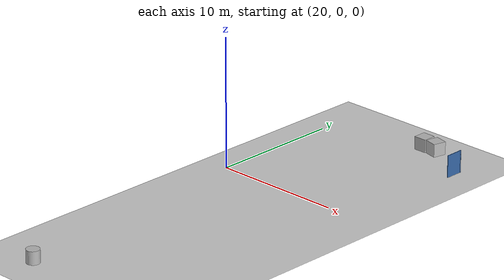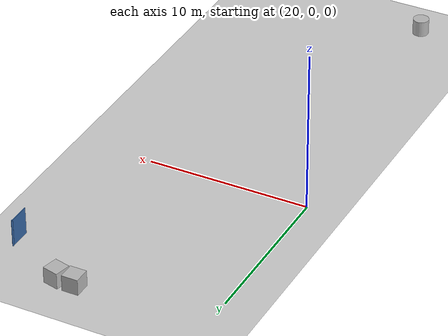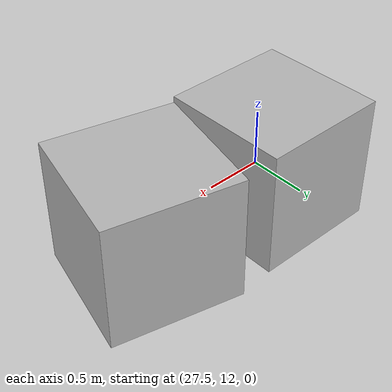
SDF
<sdf version="1.6">
 <world name="default">
  <light name="sun" type="directional">
   <pose>0 0 10 0 -0 0</pose>
   <diffuse>0.8 0.8 0.8 1</diffuse>
   <specular>0.2 0.2 0.2 1</specular>
   <attenuation>
    <range>1000</range>
    <constant>0.9</constant>
    <linear>0.01</linear>
    <quadratic>0.001</quadratic>
   </attenuation>
   <direction>-0.5 0.1 -0.9</direction>
  </light>
  <model name="ground_plane">
   <static>1</static>
   <link name="link">
    <collision name="collision">
     <geometry><plane><normal>0 0 1</normal><size>200 200</size></plane></geometry>
     <surface><friction><ode><mu>100</mu><mu2>50</mu2></ode></friction></surface>
    </collision>
    <visual name="visual">
     <cast_shadows>0</cast_shadows>
     <geometry><plane><normal>0 0 1</normal><size>200 200</size></plane></geometry>
     <material>
      <script><uri>file://media/materials/scripts/gazebo.material</uri><name>Gazebo/Grey</name></script>
     </material>
    </visual>
   </link>
  </model>
  <gravity>0 0 -9.8</gravity>
  <magnetic_field>6e-06 2.3e-05 -4.2e-05</magnetic_field>
  <atmosphere type="adiabatic"/>
  <physics name="default_physics" default="0" type="ode">
   <max_step_size>0.001</max_step_size>
   <real_time_factor>1</real_time_factor>
   <real_time_update_rate>1000</real_time_update_rate>
  </physics>
  <scene><ambient>0.4 0.4 0.4 1</ambient><background>0.7 0.7 0.7 1</background><shadows>1</shadows></scene>
  <spherical_coordinates>
   <surface_model>EARTH_WGS84</surface_model>
   <latitude_deg>0</latitude_deg>
   <longitude_deg>0</longitude_deg>
   <elevation>0</elevation>
   <heading_deg>0</heading_deg>
  </spherical_coordinates>
  <model name="hinge_door_1.3">
   <link name="link_0">
    <inertial>
     <mass>0.11</mass>
     <inertia>
      <ixx>0.0366896</ixx>
      <ixy>0</ixy>
      <ixz>0</ixz>
      <iyy>0.0477583</iyy>
      <iyz>0</iyz>
      <izz>0.0111146</izz>
     </inertia>
    </inertial>
    <pose>0.25 0 1 0 -0 0</pose>
    <visual name="visual">
     <geometry><box><size>1.3 0.05 1.7</size></box></geometry>
     <material>
      <lighting>1</lighting>
      <script><uri>file://media/materials/scripts/gazebo.material</uri><name>Gazebo/Grey</name></script>
      <shader type="pixel"><normal_map>__default__</normal_map></shader>
      <ambient>0.204 0.396 0.643 1</ambient>
      <diffuse>0.7 0.7 0.7 1</diffuse>
      <specular>0.01 0.01 0.01 1</specular>
      <emissive>0 0 0 1</emissive>
     </material>
    </visual>
    <collision name="collision">
     <geometry><box><size>1.3 0.05 1.7</size></box></geometry>
     <surface>
      <friction>
       <ode><mu>1</mu><mu2>1</mu2><fdir1>0 0 0</fdir1><slip1>0</slip1><slip2>0</slip2></ode>
       <torsional>
        <coefficient>1</coefficient>
        <patch_radius>0</patch_radius>
        <surface_radius>0</surface_radius>
        <use_patch_radius>1</use_patch_radius>
        <ode><slip>0</slip></ode>
       </torsional>
      </friction>
      <bounce><restitution_coefficient>0</restitution_coefficient><threshold>1e+06</threshold></bounce>
      <contact>
       <collide_without_contact>0</collide_without_contact>
       <collide_without_contact_bitmask>1</collide_without_contact_bitmask>
       <collide_bitmask>1</collide_bitmask>
       <ode>
        <soft_cfm>0</soft_cfm>
        <soft_erp>0.2</soft_erp>
        <kp>1e+13</kp>
        <kd>1</kd>
        <max_vel>0.01</max_vel>
        <min_depth>0</min_depth>
       </ode>
       <bullet>
        <split_impulse>1</split_impulse>
        <split_impulse_penetration_threshold>-0.01</split_impulse_penetration_threshold>
        <soft_cfm>0</soft_cfm>
        <soft_erp>0.2</soft_erp>
        <kp>1e+13</kp>
        <kd>1</kd>
       </bullet>
      </contact>
     </surface>
    </collision>
   </link>
   <link name="link_1">
    <inertial>
     <mass>10.9956</mass>
     <inertia>
      <ixx>3.67206</ixx>
      <ixy>0</ixy>
      <ixz>0</ixz>
      <iyy>3.67206</iyy>
      <iyz>0</iyz>
      <izz>0.0137445</izz>
     </inertia>
    </inertial>
    <pose>-0.45 0 1 0 -0 0</pose>
    <visual name="visual">
     <geometry><cylinder><radius>0.05</radius><length>1.7</length></cylinder></geometry>
     <material>
      <lighting>1</lighting>
      <script><uri>file://media/materials/scripts/gazebo.material</uri><name>Gazebo/Grey</name></script>
      <shader type="pixel"><normal_map>__default__</normal_map></shader>
      <ambient>0.204 0.396 0.643 1</ambient>
      <diffuse>0.7 0.7 0.7 1</diffuse>
      <specular>0.01 0.01 0.01 1</specular>
      <emissive>0 0 0 1</emissive>
     </material>
    </visual>
    <collision name="collision">
     <geometry><cylinder><radius>0.05</radius><length>2</length></cylinder></geometry>
     <surface>
      <friction>
       <ode><mu>1</mu><mu2>1</mu2><fdir1>0 0 0</fdir1><slip1>0</slip1><slip2>0</slip2></ode>
       <torsional>
        <coefficient>1</coefficient>
        <patch_radius>0</patch_radius>
        <surface_radius>0</surface_radius>
        <use_patch_radius>1</use_patch_radius>
        <ode><slip>0</slip></ode>
       </torsional>
      </friction>
      <bounce><restitution_coefficient>0</restitution_coefficient><threshold>1e+06</threshold></bounce>
      <contact>
       <collide_without_contact>0</collide_without_contact>
       <collide_without_contact_bitmask>1</collide_without_contact_bitmask>
       <collide_bitmask>1</collide_bitmask>
       <ode>
        <soft_cfm>0</soft_cfm>
        <soft_erp>0.2</soft_erp>
        <kp>1e+13</kp>
        <kd>1</kd>
        <max_vel>0.01</max_vel>
        <min_depth>0</min_depth>
       </ode>
       <bullet>
        <split_impulse>1</split_impulse>
        <split_impulse_penetration_threshold>-0.01</split_impulse_penetration_threshold>
        <soft_cfm>0</soft_cfm>
        <soft_erp>0.2</soft_erp>
        <kp>1e+13</kp>
        <kd>1</kd>
       </bullet>
      </contact>
     </surface>
    </collision>
   </link>
   <joint name="hinge" type="revolute">
    <parent>link_1</parent>
    <child>link_0</child>
    <pose>-0.7 0 0 0 -0 0</pose>
    <axis>
     <xyz>0 0 1</xyz>
     <use_parent_model_frame>0</use_parent_model_frame>
     <limit>
      <lower>-1.79769e+308</lower>
      <upper>1.79769e+308</upper>
      <effort>-1</effort>
      <velocity>-1</velocity>
     </limit>
     <dynamics>
      <spring_reference>0</spring_reference>
      <spring_stiffness>0</spring_stiffness>
      <damping>1</damping>
      <friction>1</friction>
     </dynamics>
    </axis>
    <physics>
     <ode><limit><cfm>0</cfm><erp>0.2</erp></limit><suspension><cfm>0</cfm><erp>0.2</erp></suspension></ode>
    </physics>
   </joint>
   <joint name="floor_link" type="fixed">
    <child>link_1</child>
    <parent>world</parent>
    <axis>
     <xyz>0 0 1</xyz>
     <dynamics><spring_reference>0</spring_reference><spring_stiffness>0</spring_stiffness></dynamics>
     <use_parent_model_frame>0</use_parent_model_frame>
     <limit><lower>-1e+16</lower><upper>1e+16</upper></limit>
    </axis>
   </joint>
   <pose>32.6851 10.3813 -0 0 0 -1.57</pose>
  </model>
  <model name="unit_cylinder">
   <pose>21.9644 -20.2787 0.499997 4e-06 3e-06 -0</pose>
   <link name="link">
    <inertial>
     <mass>1</mass>
     <inertia><ixx>0.145833</ixx><ixy>0</ixy><ixz>0</ixz><iyy>0.145833</iyy><iyz>0</iyz><izz>0.125</izz></inertia>
    </inertial>
    <collision name="collision">
     <geometry><cylinder><radius>0.5</radius><length>1</length></cylinder></geometry>
    </collision>
    <visual name="visual">
     <geometry><cylinder><radius>0.5</radius><length>1</length></cylinder></geometry>
    </visual>
   </link>
  </model>
  <model name="unit_box">
   <pose>28.9967 12.4041 0.499998 -2e-06 6e-06 -0.234503</pose>
   <link name="link">
    <inertial>
     <mass>1</mass>
     <inertia>
      <ixx>0.166667</ixx>
      <ixy>0</ixy>
      <ixz>0</ixz>
      <iyy>0.166667</iyy>
      <iyz>0</iyz>
      <izz>0.166667</izz>
     </inertia>
    </inertial>
    <collision name="collision"><geometry><box><size>1 1 1</size></box></geometry></collision>
    <visual name="visual"><geometry><box><size>1 1 1</size></box></geometry></visual>
   </link>
  </model>
  <model name="unit_box_0">
   <pose>27.846 12.4742 0.499995 0 9e-06 0.001959</pose>
   <link name="link">
    <inertial>
     <mass>1</mass>
     <inertia>
      <ixx>0.166667</ixx>
      <ixy>0</ixy>
      <ixz>0</ixz>
      <iyy>0.166667</iyy>
      <iyz>0</iyz>
      <izz>0.166667</izz>
     </inertia>
    </inertial>
    <collision name="collision"><geometry><box><size>1 1 1</size></box></geometry></collision>
    <visual name="visual"><geometry><box><size>1 1 1</size></box></geometry></visual>
   </link>
  </model>
 </world>
</sdf>
